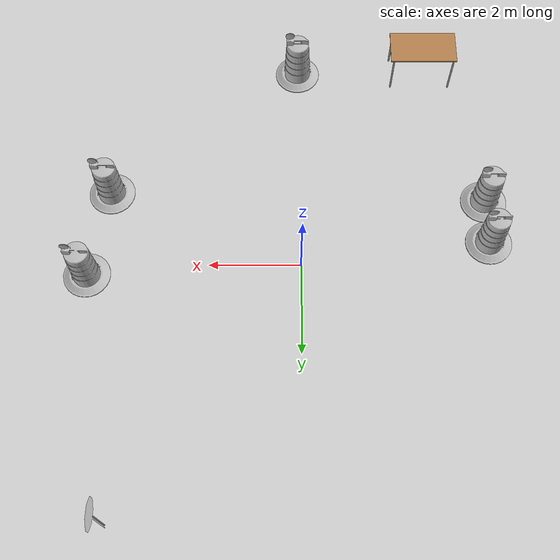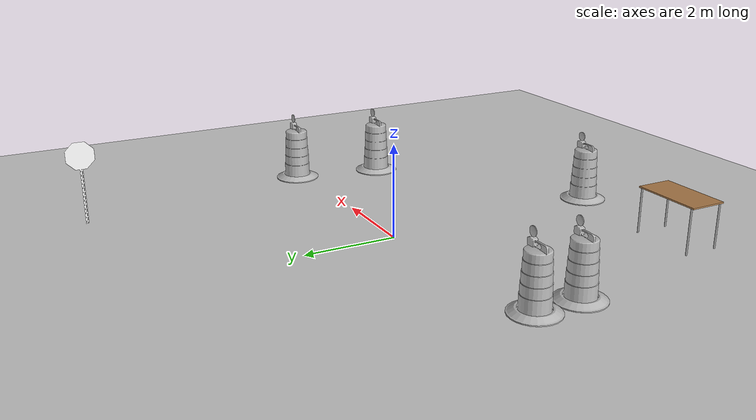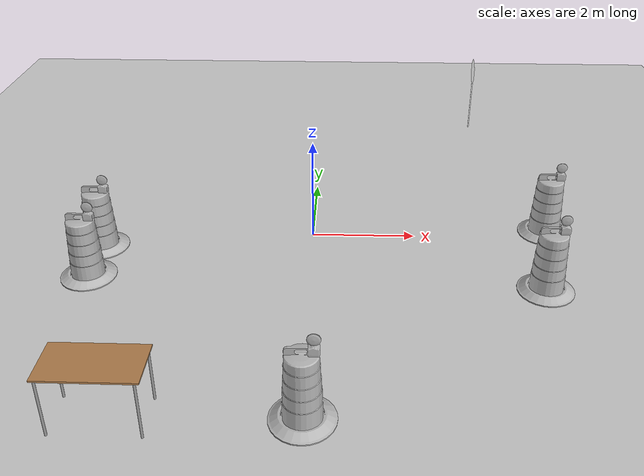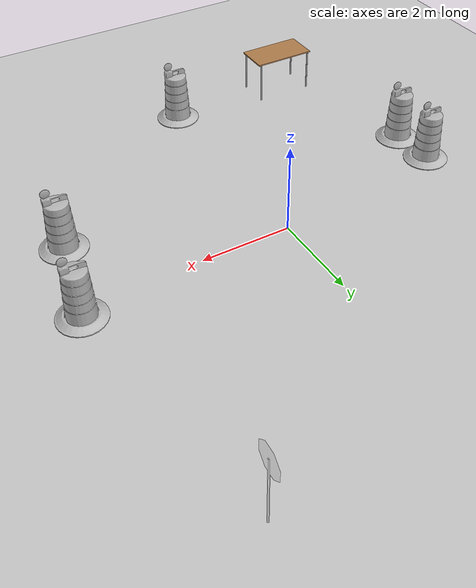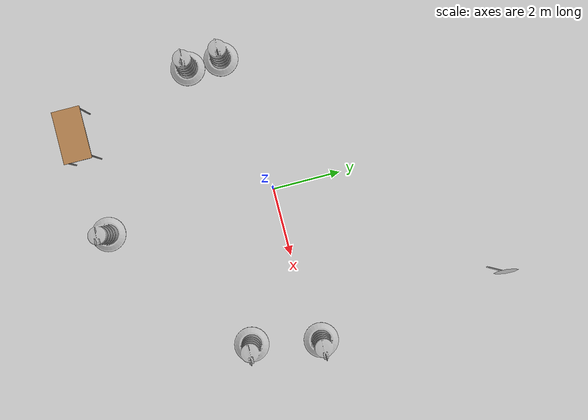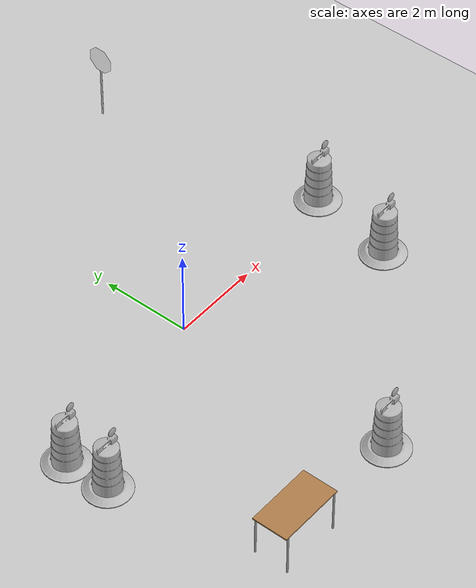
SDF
<sdf version="1.7">
 <world name="default">
  <light name="sun" type="directional">
   <pose>0 0 10 0 -0 0</pose>
   <diffuse>0.8 0.8 0.8 1</diffuse>
   <specular>0.2 0.2 0.2 1</specular>
   <attenuation>
    <range>1000</range>
    <constant>0.9</constant>
    <linear>0.01</linear>
    <quadratic>0.001</quadratic>
   </attenuation>
   <direction>-0.5 0.1 -0.9</direction>
   <spot><inner_angle>0</inner_angle><outer_angle>0</outer_angle><falloff>0</falloff></spot>
  </light>
  <model name="ground_plane">
   <static>1</static>
   <link name="link">
    <collision name="collision">
     <geometry><plane><normal>0 0 1</normal><size>100 100</size></plane></geometry>
     <surface>
      <contact><collide_bitmask>65535</collide_bitmask></contact>
      <friction><ode><mu>100</mu><mu2>50</mu2></ode></friction>
     </surface>
    </collision>
    <visual name="visual">
     <cast_shadows>0</cast_shadows>
     <geometry><plane><normal>0 0 1</normal><size>100 100</size></plane></geometry>
     <material>
      <script><uri>file://media/materials/scripts/gazebo.material</uri><name>Gazebo/Grey</name></script>
     </material>
    </visual>
   </link>
  </model>
  <gravity>0 0 -9.8</gravity>
  <magnetic_field>6e-06 2.3e-05 -4.2e-05</magnetic_field>
  <atmosphere type="adiabatic"/>
  <physics type="ode">
   <max_step_size>0.001</max_step_size>
   <real_time_factor>1</real_time_factor>
   <real_time_update_rate>1000</real_time_update_rate>
  </physics>
  <scene><ambient>0.4 0.4 0.4 1</ambient><background>0.7 0.7 0.7 1</background><shadows>1</shadows></scene>
  <audio><device>default</device></audio>
  <spherical_coordinates>
   <surface_model>EARTH_WGS84</surface_model>
   <latitude_deg>0</latitude_deg>
   <longitude_deg>0</longitude_deg>
   <elevation>0</elevation>
   <heading_deg>0</heading_deg>
  </spherical_coordinates>
  <model name="Construction Barrel_0">
   <link name="link">
    <inertial>
     <pose>0 0 0.4 0 -0 0</pose>
     <mass>500</mass>
     <inertia><ixx>51.2096</ixx><iyy>51.2096</iyy><izz>25</izz><ixy>0</ixy><ixz>0</ixz><iyz>0</iyz></inertia>
    </inertial>
    <collision name="collision">
     <geometry><mesh><uri>model://construction_barrel/meshes/construction_barrel.dae</uri></mesh></geometry>
    </collision>
    <visual name="visual">
     <geometry><mesh><uri>model://construction_barrel/meshes/construction_barrel.dae</uri></mesh></geometry>
    </visual>
   </link>
   <pose>4.23451 -1.75557 -1e-06 5e-06 -3e-06 -0.000539</pose>
  </model>
  <model name="Construction Barrel_1">
   <link name="link">
    <inertial>
     <pose>0 0 0.4 0 -0 0</pose>
     <mass>500</mass>
     <inertia><ixx>51.2096</ixx><iyy>51.2096</iyy><izz>25</izz><ixy>0</ixy><ixz>0</ixz><iyz>0</iyz></inertia>
    </inertial>
    <collision name="collision">
     <geometry><mesh><uri>model://construction_barrel/meshes/construction_barrel.dae</uri></mesh></geometry>
    </collision>
    <visual name="visual">
     <geometry><mesh><uri>model://construction_barrel/meshes/construction_barrel.dae</uri></mesh></geometry>
    </visual>
   </link>
   <pose>4.61614 0.235871 -0 0 -0 -0.015921</pose>
  </model>
  <model name="Construction Barrel_2">
   <link name="link">
    <inertial>
     <pose>0 0 0.4 0 -0 0</pose>
     <mass>500</mass>
     <inertia><ixx>51.2096</ixx><iyy>51.2096</iyy><izz>25</izz><ixy>0</ixy><ixz>0</ixz><iyz>0</iyz></inertia>
    </inertial>
    <collision name="collision">
     <geometry><mesh><uri>model://construction_barrel/meshes/construction_barrel.dae</uri></mesh></geometry>
    </collision>
    <visual name="visual">
     <geometry><mesh><uri>model://construction_barrel/meshes/construction_barrel.dae</uri></mesh></geometry>
    </visual>
   </link>
   <pose>-4.06472 -1.55759 -0 0 0 -0.033106</pose>
  </model>
  <model name="Construction Barrel_3">
   <link name="link">
    <inertial>
     <pose>0 0 0.4 0 -0 0</pose>
     <mass>500</mass>
     <inertia><ixx>51.2096</ixx><iyy>51.2096</iyy><izz>25</izz><ixy>0</ixy><ixz>0</ixz><iyz>0</iyz></inertia>
    </inertial>
    <collision name="collision">
     <geometry><mesh><uri>model://construction_barrel/meshes/construction_barrel.dae</uri></mesh></geometry>
    </collision>
    <visual name="visual">
     <geometry><mesh><uri>model://construction_barrel/meshes/construction_barrel.dae</uri></mesh></geometry>
    </visual>
   </link>
   <pose>0.079552 -5.00823 -1e-06 -8e-06 -2e-06 -4.4e-05</pose>
  </model>
  <model name="Construction Barrel_4">
   <link name="link">
    <inertial>
     <pose>0 0 0.4 0 -0 0</pose>
     <mass>500</mass>
     <inertia><ixx>51.2096</ixx><iyy>51.2096</iyy><izz>25</izz><ixy>0</ixy><ixz>0</ixz><iyz>0</iyz></inertia>
    </inertial>
    <collision name="collision">
     <geometry><mesh><uri>model://construction_barrel/meshes/construction_barrel.dae</uri></mesh></geometry>
    </collision>
    <visual name="visual">
     <geometry><mesh><uri>model://construction_barrel/meshes/construction_barrel.dae</uri></mesh></geometry>
    </visual>
   </link>
   <pose>-4.09458 -0.542964 -0 0 0 -0.007951</pose>
  </model>
  <model name="table">
   <static>1</static>
   <link name="link">
    <collision name="surface">
     <pose>0 0 1 0 -0 0</pose>
     <geometry><box><size>1.5 0.8 0.03</size></box></geometry>
     <surface><friction><ode><mu>0.6</mu><mu2>0.6</mu2></ode></friction></surface>
    </collision>
    <visual name="visual1">
     <pose>0 0 1 0 -0 0</pose>
     <geometry><box><size>1.5 0.8 0.03</size></box></geometry>
     <material>
      <script><uri>file://media/materials/scripts/gazebo.material</uri><name>Gazebo/Wood</name></script>
     </material>
    </visual>
    <collision name="front_left_leg">
     <pose>0.68 0.38 0.5 0 -0 0</pose>
     <geometry><cylinder><radius>0.02</radius><length>1</length></cylinder></geometry>
    </collision>
    <visual name="front_left_leg">
     <pose>0.68 0.38 0.5 0 -0 0</pose>
     <geometry><cylinder><radius>0.02</radius><length>1</length></cylinder></geometry>
     <material>
      <script><uri>file://media/materials/scripts/gazebo.material</uri><name>Gazebo/Grey</name></script>
     </material>
    </visual>
    <collision name="front_right_leg">
     <pose>0.68 -0.38 0.5 0 -0 0</pose>
     <geometry><cylinder><radius>0.02</radius><length>1</length></cylinder></geometry>
    </collision>
    <visual name="front_right_leg">
     <pose>0.68 -0.38 0.5 0 -0 0</pose>
     <geometry><cylinder><radius>0.02</radius><length>1</length></cylinder></geometry>
     <material>
      <script><uri>file://media/materials/scripts/gazebo.material</uri><name>Gazebo/Grey</name></script>
     </material>
    </visual>
    <collision name="back_right_leg">
     <pose>-0.68 -0.38 0.5 0 -0 0</pose>
     <geometry><cylinder><radius>0.02</radius><length>1</length></cylinder></geometry>
    </collision>
    <visual name="back_right_leg">
     <pose>-0.68 -0.38 0.5 0 -0 0</pose>
     <geometry><cylinder><radius>0.02</radius><length>1</length></cylinder></geometry>
     <material>
      <script><uri>file://media/materials/scripts/gazebo.material</uri><name>Gazebo/Grey</name></script>
     </material>
    </visual>
    <collision name="back_left_leg">
     <pose>-0.68 0.38 0.5 0 -0 0</pose>
     <geometry><cylinder><radius>0.02</radius><length>1</length></cylinder></geometry>
    </collision>
    <visual name="back_left_leg">
     <pose>-0.68 0.38 0.5 0 -0 0</pose>
     <geometry><cylinder><radius>0.02</radius><length>1</length></cylinder></geometry>
     <material>
      <script><uri>file://media/materials/scripts/gazebo.material</uri><name>Gazebo/Grey</name></script>
     </material>
    </visual>
   </link>
   <pose>-2.80794 -5.05336 0 0 -0 0</pose>
  </model>
  <model name="Stop Sign">
   <static>1</static>
   <link name="link">
    <collision name="collision">
     <geometry><mesh><uri>model://stop_sign/meshes/stop_sign.dae</uri></mesh></geometry>
    </collision>
    <visual name="visual">
     <geometry><mesh><uri>model://stop_sign/meshes/stop_sign.dae</uri></mesh></geometry>
     <material>
      <script>
       <uri>model://stop_sign/materials/scripts</uri>
       <uri>model://stop_sign/materials/textures</uri>
       <name>StopSign/Diffuse</name>
      </script>
     </material>
    </visual>
   </link>
   <pose>3.78114 5.45682 0 0 0 -1.6</pose>
  </model>
 </world>
</sdf>
